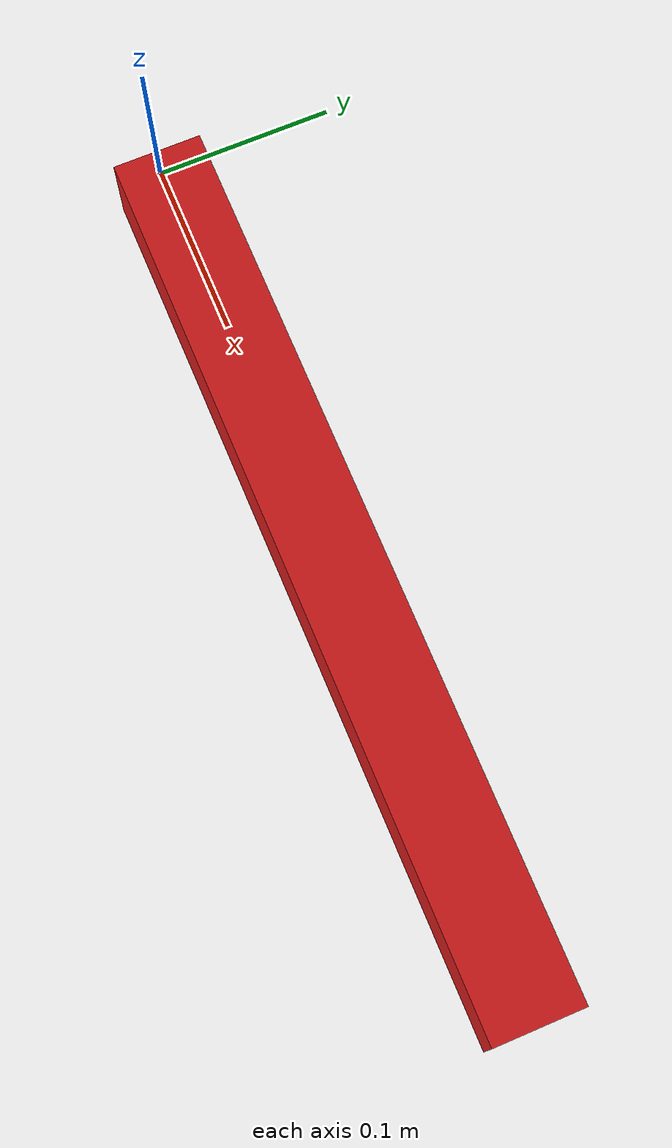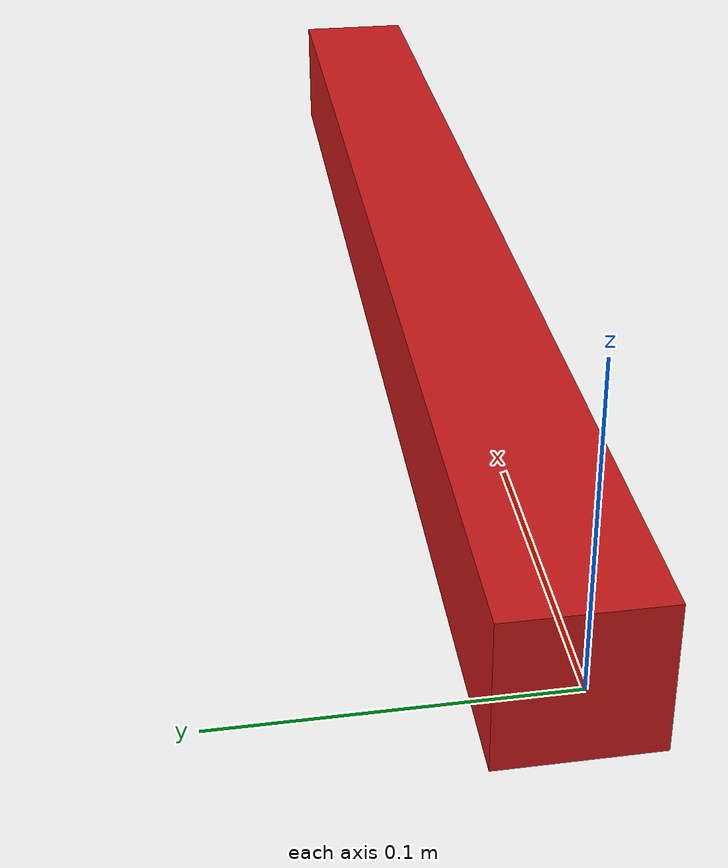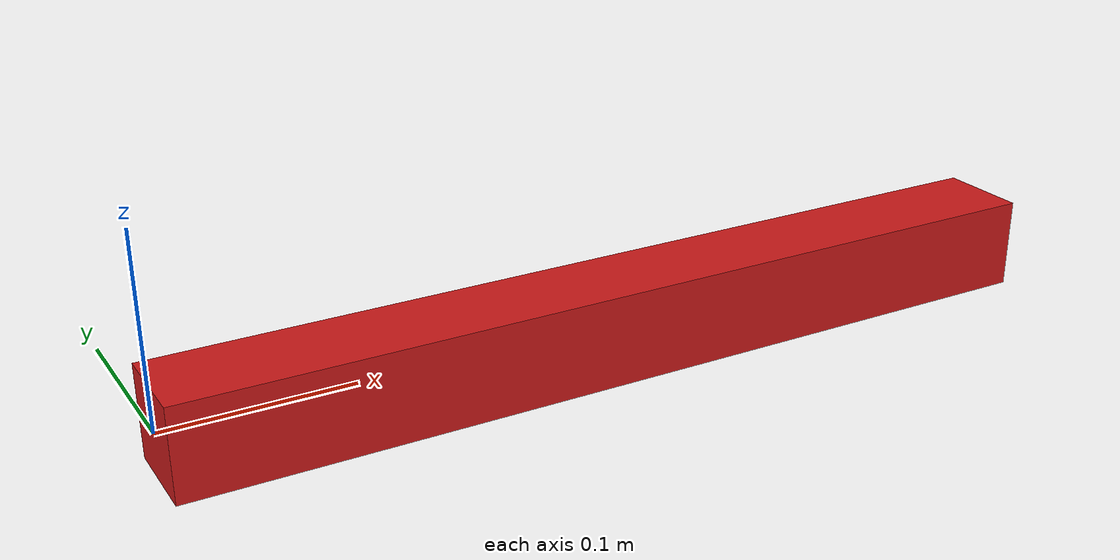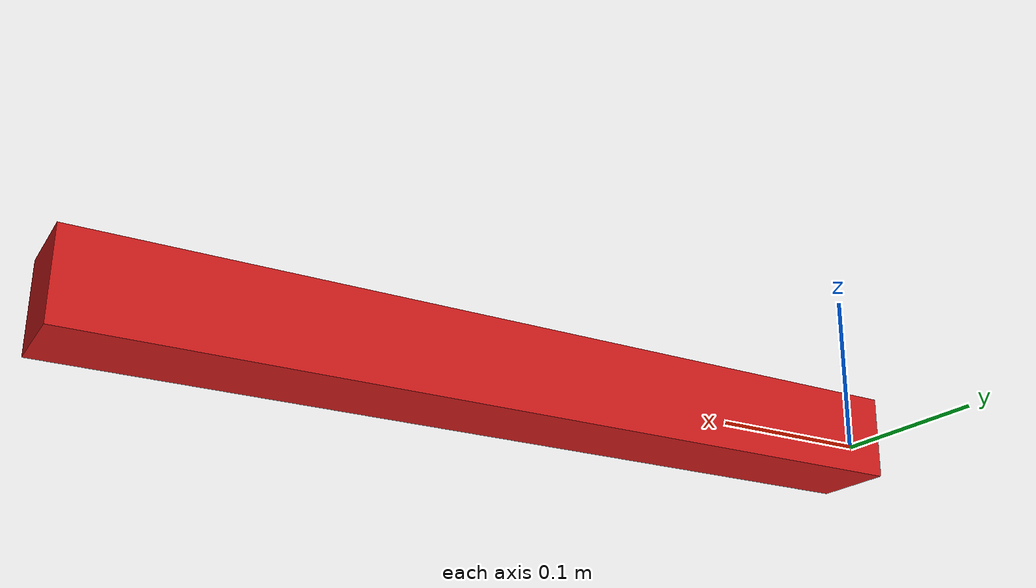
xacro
<?xml version="1.0"?>

<robot name="variable_four_bar_branch" xmlns:xacro="http://ros.org/wiki/xacro">
    <xacro:arg name="branch_count" default="4"/>
    <xacro:arg name="depth_count" default="3"/>
    <xacro:property name="branch_count" value="$(arg branch_count)"/>
    <xacro:property name="depth_count" value="$(arg depth_count)"/>
    <xacro:property name="i" value="0"/>
    <xacro:include filename="approx_four_bar_properties.xacro"/>

    <xacro:macro name="build_four_bar_series_chain_at_each_branch" params="branch_count depth_count i">
        <xacro:if value="${branch_count - i}">
            <xacro:if value="${depth_count - 1}">
                <xacro:nonsequential_serial_chain
                    parent_link_idx="${3 * (branch_count - i) - 2}"
                    first_child_link_idx="${3 * branch_count + 3 * (branch_count - 1) * (depth_count - 1) + 1
                                        - i * 3 * (depth_count - 1)}"
                    count="${depth_count}"/>

                <xacro:build_four_bar_series_chain_at_each_branch
                    branch_count="${branch_count}"
                    depth_count="${depth_count}"
                    i="${i + 1}"/>
            </xacro:if>
        </xacro:if>
    </xacro:macro>

    <link name="ground"/>
    <link name="Floating Base">
        <inertial>
            <mass value="5.0"/>
            <origin xyz="0. 0. 0."/>
            <inertia ixx="0.1" ixy="0."  ixz="0."
                     iyy="0.1" iyz="0." izz="0.1"/>
        </inertial>
    </link>
    <joint name="world_to_base" type="floating">
        <origin xyz="0 0 0" rpy="0 0 0"/>
        <parent link="ground"/>
        <child link="Floating Base"/>
    </joint>

    <xacro:root_branch branch_count="${branch_count}"/>
    <xacro:build_four_bar_series_chain_at_each_branch branch_count="${branch_count}"
                                                      depth_count="${depth_count}"
                                                      i="${i}"/>

</robot>

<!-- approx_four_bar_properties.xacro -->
<robot xmlns:xacro="http://ros.org/wiki/xacro">

    <xacro:property name="effort_limit" value="30"/>
    <xacro:property name="velocity_limit" value="1.0"/>
    <xacro:property name="joint_lower_limit" value="-10"/>
    <xacro:property name="joint_upper_limit" value="10"/>

    <xacro:macro name="L2" params="name">
        <link name="${name}">
            <inertial>
                <mass value="3.3"/>
                <origin xyz="0.0 0.0 0.0"/>
                <inertia ixx="0.011253" ixy="0" ixz="0" iyy="0.036203" iyz="0" izz="0.042673"/>
            </inertial>
            <visual>
                <origin xyz="0.25 0 0" rpy="0 0 0"/>
                <geometry>
                    <box size="0.5 0.05 0.05"/>
                </geometry>
                <material name="Red">
                    <color rgba="0.8 0.1 0.1 1.0"/>
                </material>
        </visual>
        </link>
    </xacro:macro>

    <xacro:macro name="J2" params="name parent_link child_link">
        <joint name="${name}" type="revolute" independent="true">
            <parent link="${parent_link}"/>
            <child link="${child_link}"/>
            <origin xyz="0.0 0.0 0.0"/>
            <axis xyz="0 0 1"/>
            <limit effort="${effort_limit}" velocity="${velocity_limit}"
                   lower="${joint_lower_limit}" upper="${joint_upper_limit}"/>
        </joint>
    </xacro:macro>

    <xacro:macro name="root_branch" params="branch_count">
        <xacro:if value="${branch_count}">
            <xacro:L2 name="link_${(branch_count - 1) * 3 + 2}"/>
            <xacro:J2 name="base_to_link_${(branch_count - 1) * 3 + 2}"
                      parent_link="Floating Base"
                      child_link="link_${(branch_count - 1 ) * 3 + 2}"/>
            <xacro:root_branch branch_count="${branch_count - 1}"/>
        </xacro:if>
    </xacro:macro>

    <xacro:macro name="one_four_bar_chain" params="parent_link_idx child_link_idx">
        <xacro:L2 name="link_${child_link_idx + 1}"/>
        <xacro:J2 name="link_${parent_link_idx}_to_link_${child_link_idx + 1}"
                  parent_link="link_${parent_link_idx}"
                  child_link="link_${child_link_idx + 1}"/>
    </xacro:macro>

    <xacro:macro name="sequential_four_bar_chain" params="parent_link_idx count">
        <xacro:if value="${count - 1}">
            <xacro:one_four_bar_chain parent_link_idx="${parent_link_idx + 1}"
                                      child_link_idx="${parent_link_idx + 3}"/>

            <xacro:sequential_four_bar_chain parent_link_idx="${parent_link_idx + 3}"
                                             count="${count - 1}"/>
        </xacro:if>
    </xacro:macro>

    <xacro:macro name="nonsequential_serial_chain" params="parent_link_idx first_child_link_idx count">
        <xacro:one_four_bar_chain parent_link_idx="${parent_link_idx + 1}"
                                  child_link_idx="${first_child_link_idx}"/>
        <xacro:sequential_four_bar_chain parent_link_idx="${first_child_link_idx}"
                                         count="${count - 1}"/>
    </xacro:macro>

</robot>
